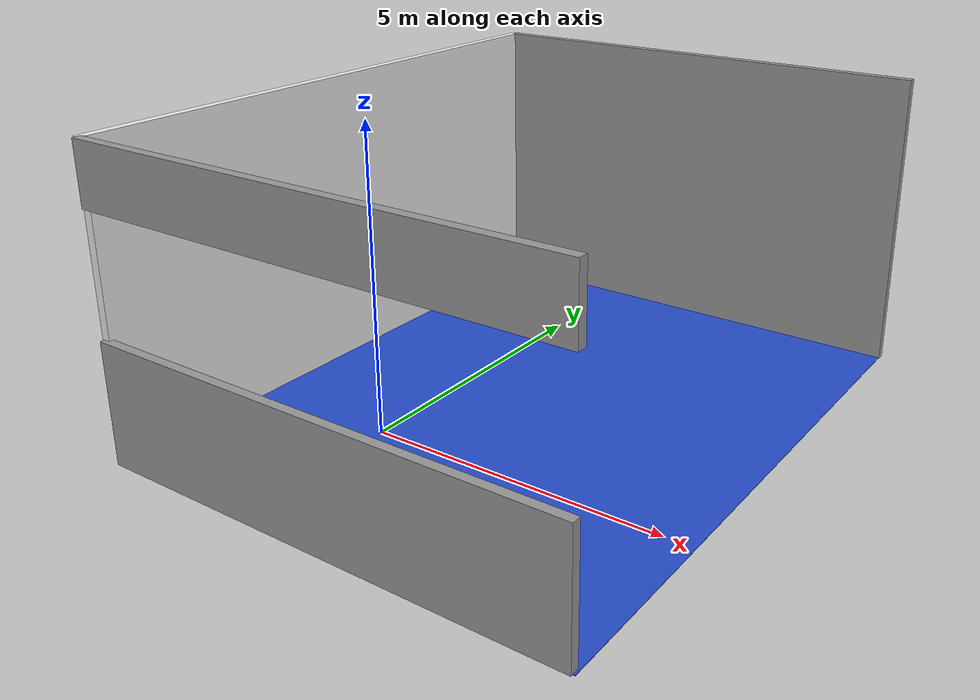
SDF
<?xml version='1.0'?>
<sdf version='1.7'>
  <model name='Workshop'>
    <link name='Wall_10'>
      <pose>-2.5053 2.09449 2 0 0 -1.5708</pose>
      <self_collide>0</self_collide>
      <enable_wind>0</enable_wind>
      <kinematic>0</kinematic>
      <gravity>1</gravity>
      <inertial>
        <mass>1</mass>
        <pose>0 0 0 0 -0 0</pose>
        <inertia>
          <ixx>1</ixx>
          <ixy>0</ixy>
          <ixz>0</ixz>
          <iyy>1</iyy>
          <iyz>0</iyz>
          <izz>1</izz>
        </inertia>
      </inertial>
      <visual name='Wall_10_Visual'>
        <pose>0 0 0.5 0 -0 0</pose>
        <geometry>
          <box>
            <size>10 0.15 5</size>
          </box>
        </geometry>
        <material>
          <script>
            <uri>file://media/materials/scripts/gazebo.material</uri>
            <name>Gazebo/White</name>
          </script>
          <ambient>1 1 1 1</ambient>
          <shader type='pixel'>
            <normal_map>__default__</normal_map>
          </shader>
          <diffuse>0.7 0.7 0.7 1</diffuse>
          <specular>0.01 0.01 0.01 1</specular>
          <emissive>0 0 0 1</emissive>
        </material>
        <transparency>0</transparency>
        <cast_shadows>1</cast_shadows>
      </visual>
      <collision name='Wall_10_Collision'>
        <laser_retro>0</laser_retro>
        <max_contacts>10</max_contacts>
        <pose>0 0 0.5 0 -0 0</pose>
        <geometry>
          <box>
            <size>10 0.15 1</size>
          </box>
        </geometry>
        <surface>
          <friction>
            <ode>
              <mu>1</mu>
              <mu2>1</mu2>
              <fdir1>0 0 0</fdir1>
              <slip1>0</slip1>
              <slip2>0</slip2>
            </ode>
            <torsional>
              <coefficient>1</coefficient>
              <patch_radius>0</patch_radius>
              <surface_radius>0</surface_radius>
              <use_patch_radius>1</use_patch_radius>
              <ode>
                <slip>0</slip>
              </ode>
            </torsional>
          </friction>
          <bounce>
            <restitution_coefficient>0</restitution_coefficient>
            <threshold>1e+06</threshold>
          </bounce>
          <contact>
            <collide_without_contact>0</collide_without_contact>
            <collide_without_contact_bitmask>1</collide_without_contact_bitmask>
            <collide_bitmask>1</collide_bitmask>
            <ode>
              <soft_cfm>0</soft_cfm>
              <soft_erp>0.2</soft_erp>
              <kp>1e+13</kp>
              <kd>1</kd>
              <max_vel>0.01</max_vel>
              <min_depth>0</min_depth>
            </ode>
            <bullet>
              <split_impulse>1</split_impulse>
              <split_impulse_penetration_threshold>-0.01</split_impulse_penetration_threshold>
              <soft_cfm>0</soft_cfm>
              <soft_erp>0.2</soft_erp>
              <kp>1e+13</kp>
              <kd>1</kd>
            </bullet>
          </contact>
        </surface>
      </collision>
    </link>
    <link name='Wall_11'>
      <pose>1.46131 -2.90507 0.516113 0 -0 3.14159</pose>
      <self_collide>0</self_collide>
      <enable_wind>0</enable_wind>
      <kinematic>0</kinematic>
      <inertial>
        <inertia>
          <ixx>0</ixx>
          <ixy>0</ixy>
          <ixz>0</ixz>
          <iyy>0</iyy>
          <iyz>0</iyz>
          <izz>0</izz>
        </inertia>
        <mass>0</mass>
        <pose>0 0 0 0 -0 0</pose>
      </inertial>
      <gravity>1</gravity>
      <visual name='Wall_11_Visual'>
        <pose>0 0 0.5 0 -0 0</pose>
        <geometry>
          <box>
            <size>8 0.15 2</size>
          </box>
        </geometry>
        <material>
          <script>
            <uri>file://media/materials/scripts/gazebo.material</uri>
            <name>Gazebo/Grey</name>
          </script>
          <ambient>1 1 1 1</ambient>
          <shader type='pixel'>
            <normal_map>__default__</normal_map>
          </shader>
          <emissive>0 0 0 1</emissive>
          <diffuse>0.7 0.7 0.7 1</diffuse>
          <specular>0.01 0.01 0.01 1</specular>
        </material>
        <transparency>0</transparency>
        <cast_shadows>1</cast_shadows>
      </visual>
      <collision name='Wall_11_Collision'>
        <laser_retro>0</laser_retro>
        <max_contacts>10</max_contacts>
        <pose>0 0 0.5 0 -0 0</pose>
        <geometry>
          <box>
            <size>7.71217 0.15 1</size>
          </box>
        </geometry>
        <surface>
          <friction>
            <ode>
              <mu>1</mu>
              <mu2>1</mu2>
              <fdir1>0 0 0</fdir1>
              <slip1>0</slip1>
              <slip2>0</slip2>
            </ode>
            <torsional>
              <coefficient>1</coefficient>
              <patch_radius>0</patch_radius>
              <surface_radius>0</surface_radius>
              <use_patch_radius>1</use_patch_radius>
              <ode>
                <slip>0</slip>
              </ode>
            </torsional>
          </friction>
          <bounce>
            <restitution_coefficient>0</restitution_coefficient>
            <threshold>1e+06</threshold>
          </bounce>
          <contact>
            <collide_without_contact>0</collide_without_contact>
            <collide_without_contact_bitmask>1</collide_without_contact_bitmask>
            <collide_bitmask>1</collide_bitmask>
            <ode>
              <soft_cfm>0</soft_cfm>
              <soft_erp>0.2</soft_erp>
              <kp>1e+13</kp>
              <kd>1</kd>
              <max_vel>0.01</max_vel>
              <min_depth>0</min_depth>
            </ode>
            <bullet>
              <split_impulse>1</split_impulse>
              <split_impulse_penetration_threshold>-0.01</split_impulse_penetration_threshold>
              <soft_cfm>0</soft_cfm>
              <soft_erp>0.2</soft_erp>
              <kp>1e+13</kp>
              <kd>1</kd>
            </bullet>
          </contact>
        </surface>
      </collision>
    </link>
    <link name='Wall_11_clone'>
      <pose>1.4947 -2.90551 4 0 -0 3.14159</pose>
      <self_collide>0</self_collide>
      <enable_wind>0</enable_wind>
      <kinematic>0</kinematic>
      <inertial>
        <inertia>
          <ixx>0</ixx>
          <ixy>0</ixy>
          <ixz>0</ixz>
          <iyy>0</iyy>
          <iyz>0</iyz>
          <izz>0</izz>
        </inertia>
        <mass>0</mass>
        <pose>0 0 0 0 -0 0</pose>
      </inertial>
      <gravity>1</gravity>
      <visual name='Wall_11_Visual'>
        <pose>0 0 0.5 0 -0 0</pose>
        <geometry>
          <box>
            <size>8 0.15 1</size>
          </box>
        </geometry>
        <material>
          <script>
            <uri>file://media/materials/scripts/gazebo.material</uri>
            <name>Gazebo/Grey</name>
          </script>
          <ambient>1 1 1 1</ambient>
          <shader type='pixel'>
            <normal_map>__default__</normal_map>
          </shader>
          <emissive>0 0 0 1</emissive>
          <diffuse>0.7 0.7 0.7 1</diffuse>
          <specular>0.01 0.01 0.01 1</specular>
        </material>
        <transparency>0</transparency>
        <cast_shadows>1</cast_shadows>
      </visual>
      <collision name='Wall_11_Collision'>
        <laser_retro>0</laser_retro>
        <max_contacts>10</max_contacts>
        <pose>0 0 0.5 0 -0 0</pose>
        <geometry>
          <box>
            <size>7.71217 0.15 1</size>
          </box>
        </geometry>
        <surface>
          <friction>
            <ode>
              <mu>1</mu>
              <mu2>1</mu2>
              <fdir1>0 0 0</fdir1>
              <slip1>0</slip1>
              <slip2>0</slip2>
            </ode>
            <torsional>
              <coefficient>1</coefficient>
              <patch_radius>0</patch_radius>
              <surface_radius>0</surface_radius>
              <use_patch_radius>1</use_patch_radius>
              <ode>
                <slip>0</slip>
              </ode>
            </torsional>
          </friction>
          <bounce>
            <restitution_coefficient>0</restitution_coefficient>
            <threshold>1e+06</threshold>
          </bounce>
          <contact>
            <collide_without_contact>0</collide_without_contact>
            <collide_without_contact_bitmask>1</collide_without_contact_bitmask>
            <collide_bitmask>1</collide_bitmask>
            <ode>
              <soft_cfm>0</soft_cfm>
              <soft_erp>0.2</soft_erp>
              <kp>1e+13</kp>
              <kd>1</kd>
              <max_vel>0.01</max_vel>
              <min_depth>0</min_depth>
            </ode>
            <bullet>
              <split_impulse>1</split_impulse>
              <split_impulse_penetration_threshold>-0.01</split_impulse_penetration_threshold>
              <soft_cfm>0</soft_cfm>
              <soft_erp>0.2</soft_erp>
              <kp>1e+13</kp>
              <kd>1</kd>
            </bullet>
          </contact>
        </surface>
      </collision>
    </link>
    <link name='Wall_13'>
      <pose>1.4947 7.09449 2 0 -0 3.14159</pose>
      <self_collide>0</self_collide>
      <enable_wind>0</enable_wind>
      <kinematic>0</kinematic>
      <gravity>1</gravity>
      <inertial>
        <mass>1</mass>
        <pose>0 0 0 0 -0 0</pose>
        <inertia>
          <ixx>1</ixx>
          <ixy>0</ixy>
          <ixz>0</ixz>
          <iyy>1</iyy>
          <iyz>0</iyz>
          <izz>1</izz>
        </inertia>
      </inertial>
      <visual name='Wall_13_Visual'>
        <pose>0 0 0.5 0 -0 0</pose>
        <geometry>
          <box>
            <size>8 0.15 5</size>
          </box>
        </geometry>
        <material>
          <script>
            <uri>file://media/materials/scripts/gazebo.material</uri>
            <name>Gazebo/Grey</name>
          </script>
          <ambient>1 1 1 1</ambient>
          <shader type='pixel'>
            <normal_map>__default__</normal_map>
          </shader>
          <diffuse>0.7 0.7 0.7 1</diffuse>
          <specular>0.01 0.01 0.01 1</specular>
          <emissive>0 0 0 1</emissive>
        </material>
        <transparency>0</transparency>
        <cast_shadows>1</cast_shadows>
      </visual>
      <collision name='Wall_13_Collision'>
        <laser_retro>0</laser_retro>
        <max_contacts>10</max_contacts>
        <pose>0 0 0.5 0 -0 0</pose>
        <geometry>
          <box>
            <size>4.55706 0.15 1</size>
          </box>
        </geometry>
        <surface>
          <friction>
            <ode>
              <mu>1</mu>
              <mu2>1</mu2>
              <fdir1>0 0 0</fdir1>
              <slip1>0</slip1>
              <slip2>0</slip2>
            </ode>
            <torsional>
              <coefficient>1</coefficient>
              <patch_radius>0</patch_radius>
              <surface_radius>0</surface_radius>
              <use_patch_radius>1</use_patch_radius>
              <ode>
                <slip>0</slip>
              </ode>
            </torsional>
          </friction>
          <bounce>
            <restitution_coefficient>0</restitution_coefficient>
            <threshold>1e+06</threshold>
          </bounce>
          <contact>
            <collide_without_contact>0</collide_without_contact>
            <collide_without_contact_bitmask>1</collide_without_contact_bitmask>
            <collide_bitmask>1</collide_bitmask>
            <ode>
              <soft_cfm>0</soft_cfm>
              <soft_erp>0.2</soft_erp>
              <kp>1e+13</kp>
              <kd>1</kd>
              <max_vel>0.01</max_vel>
              <min_depth>0</min_depth>
            </ode>
            <bullet>
              <split_impulse>1</split_impulse>
              <split_impulse_penetration_threshold>-0.01</split_impulse_penetration_threshold>
              <soft_cfm>0</soft_cfm>
              <soft_erp>0.2</soft_erp>
              <kp>1e+13</kp>
              <kd>1</kd>
            </bullet>
          </contact>
        </surface>
      </collision>
    </link>
    <link name='link_0'>
      <inertial>
        <mass>1</mass>
        <inertia>
          <ixx>0.166667</ixx>
          <ixy>0</ixy>
          <ixz>0</ixz>
          <iyy>0.166667</iyy>
          <iyz>0</iyz>
          <izz>0.166667</izz>
        </inertia>
        <pose>0 0 0 0 -0 0</pose>
      </inertial>
      <pose>1.49282 2.06191 0.012848 0 0 -1.5708</pose>
      <gravity>1</gravity>
      <self_collide>0</self_collide>
      <kinematic>0</kinematic>
      <enable_wind>0</enable_wind>
      <visual name='visual'>
        <pose>0 0 0 0 -0 0</pose>
        <geometry>
          <box>
            <size>10 8 0.013</size>
          </box>
        </geometry>
        <material>
          <lighting>1</lighting>
          <script>
            <uri>file://media/materials/scripts/gazebo.material</uri>
            <name>Gazebo/Blue</name>
          </script>
          <shader type='pixel'>
            <normal_map>__default__</normal_map>
          </shader>
          <ambient>0.1 0.5 0.6 1</ambient>
          <diffuse>0.1 0.5 0.6 1</diffuse>
          <specular>0.01 0.01 0.01 1</specular>
          <emissive>0 0 0 1</emissive>
        </material>
        <transparency>0</transparency>
        <cast_shadows>1</cast_shadows>
      </visual>
      <collision name='collision'>
        <laser_retro>0</laser_retro>
        <max_contacts>10</max_contacts>
        <pose>0 0 0 0 -0 0</pose>
        <geometry>
          <box>
            <size>1 1 1</size>
          </box>
        </geometry>
        <surface>
          <friction>
            <ode>
              <mu>1</mu>
              <mu2>1</mu2>
              <fdir1>0 0 0</fdir1>
              <slip1>0</slip1>
              <slip2>0</slip2>
            </ode>
            <torsional>
              <coefficient>1</coefficient>
              <patch_radius>0</patch_radius>
              <surface_radius>0</surface_radius>
              <use_patch_radius>1</use_patch_radius>
              <ode>
                <slip>0</slip>
              </ode>
            </torsional>
          </friction>
          <bounce>
            <restitution_coefficient>0</restitution_coefficient>
            <threshold>1e+06</threshold>
          </bounce>
          <contact>
            <collide_without_contact>0</collide_without_contact>
            <collide_without_contact_bitmask>1</collide_without_contact_bitmask>
            <collide_bitmask>1</collide_bitmask>
            <ode>
              <soft_cfm>0</soft_cfm>
              <soft_erp>0.2</soft_erp>
              <kp>1e+13</kp>
              <kd>1</kd>
              <max_vel>0.01</max_vel>
              <min_depth>0</min_depth>
            </ode>
            <bullet>
              <split_impulse>1</split_impulse>
              <split_impulse_penetration_threshold>-0.01</split_impulse_penetration_threshold>
              <soft_cfm>0</soft_cfm>
              <soft_erp>0.2</soft_erp>
              <kp>1e+13</kp>
              <kd>1</kd>
            </bullet>
          </contact>
        </surface>
      </collision>
    </link>
    <static>1</static>
    <allow_auto_disable>1</allow_auto_disable>
  </model>
</sdf>
